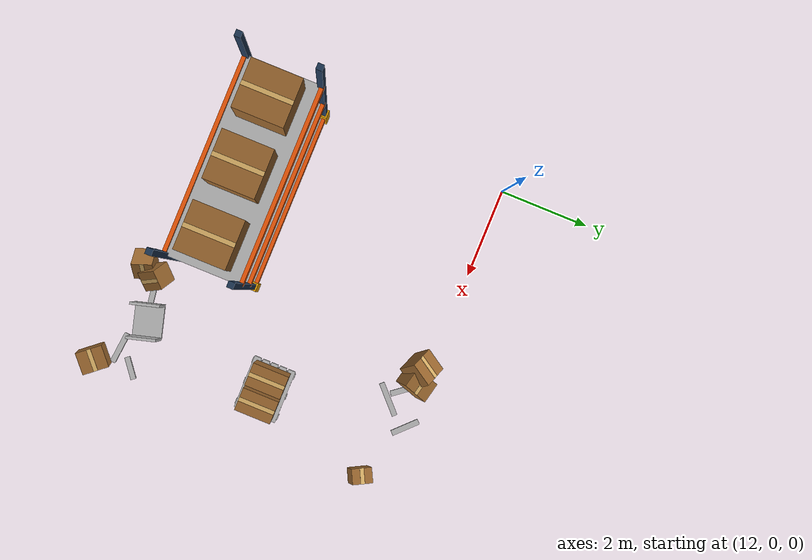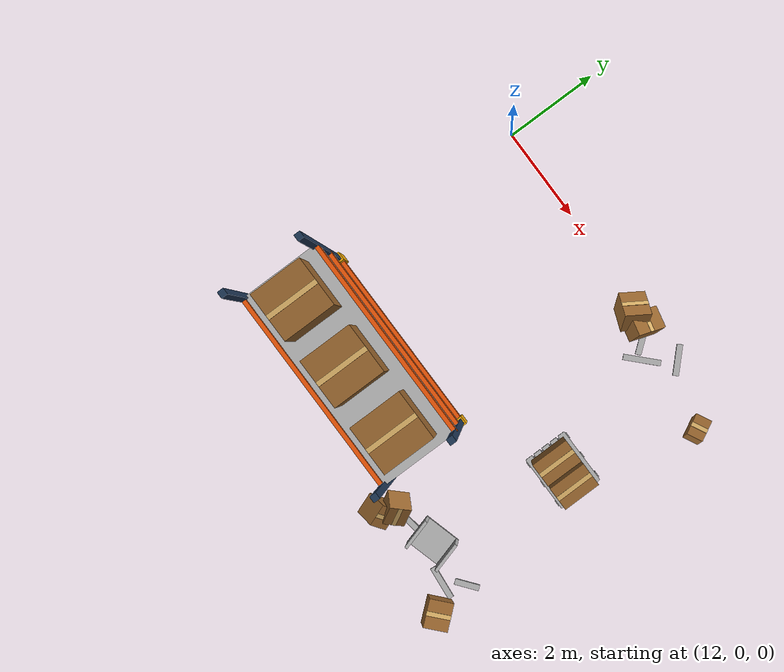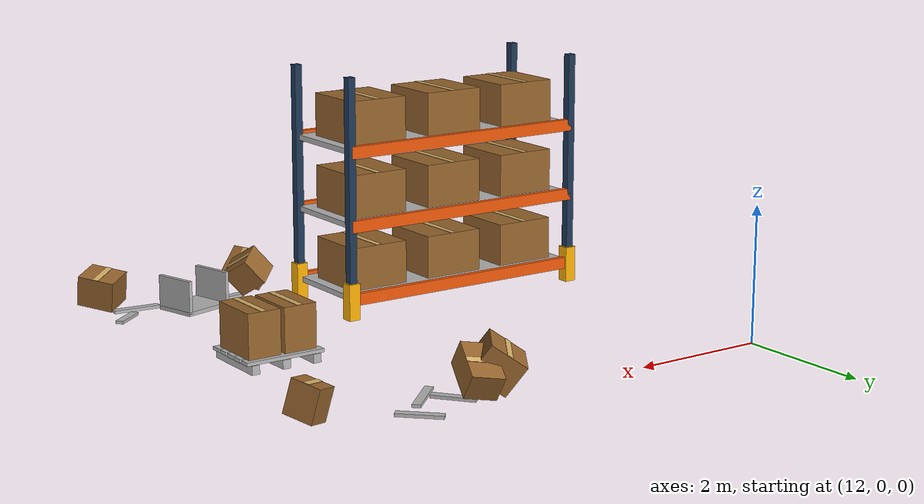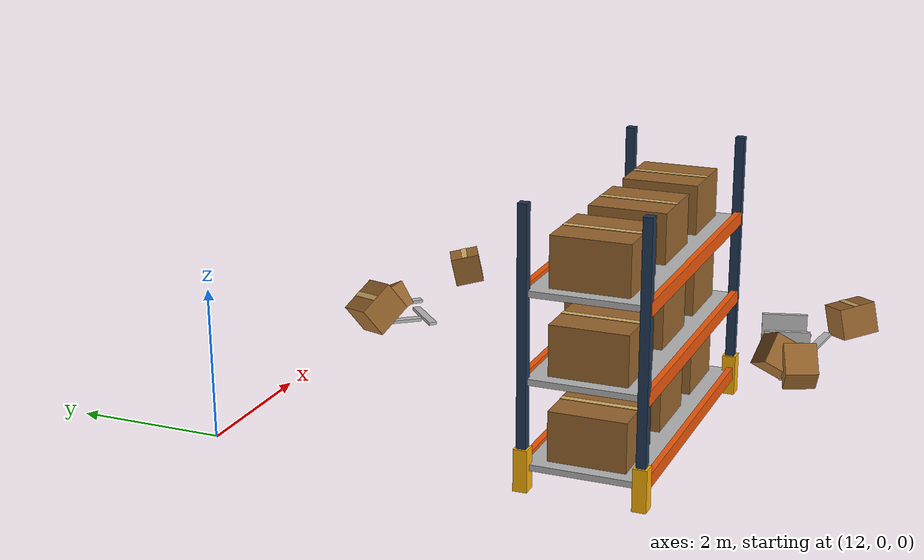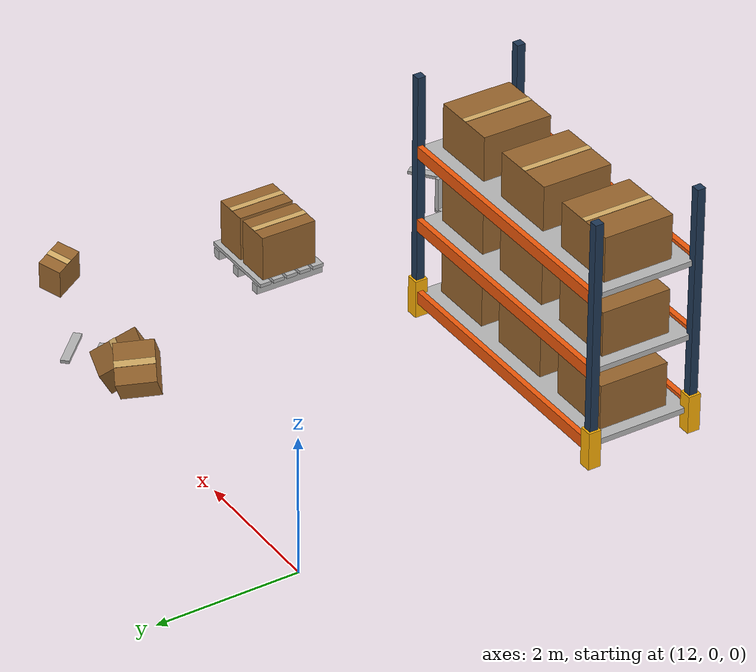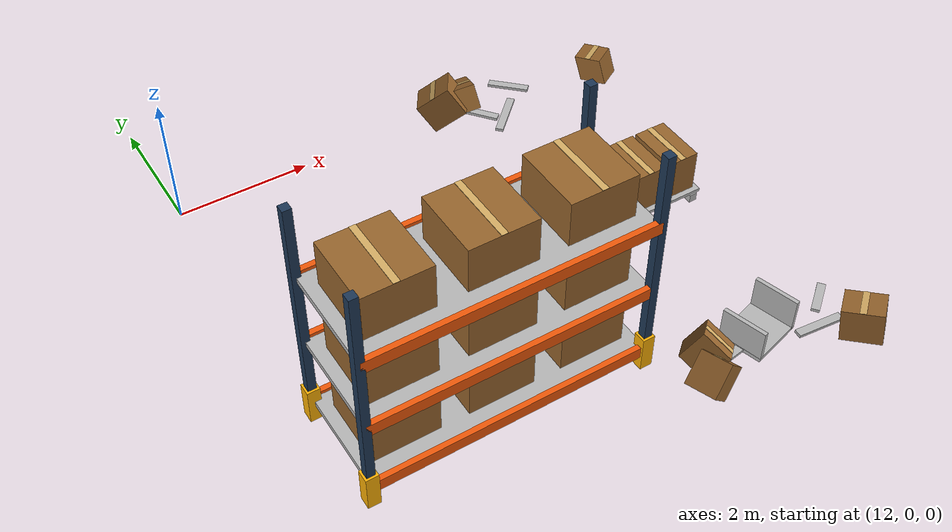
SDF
<sdf version="1.9">
 <world name="factory">
  <model name="rack_1_1_1">
   <static>true</static>
   <pose>14 -5 0 0 0 0</pose>
   <link name="body">
    <visual name="post0_visual">
     <pose>-2 -0.75 1.8 0 0 0</pose>
     <geometry><box><size>0.12 0.12 3.6</size></box></geometry>
     <material><ambient>.12 .22 .34 1</ambient><diffuse>.12 .22 .34 1</diffuse></material>
    </visual>
    <collision name="post0_collision">
     <pose>-2 -0.75 1.8 0 0 0</pose>
     <geometry><box><size>0.12 0.12 3.6</size></box></geometry>
    </collision>
    <visual name="guard0_visual">
     <pose>-2 -0.75 0.275 0 0 0</pose>
     <geometry><box><size>0.18 0.18 0.55</size></box></geometry>
     <material><ambient>1 .7 .02 1</ambient><diffuse>1 .7 .02 1</diffuse></material>
    </visual>
    <collision name="guard0_collision">
     <pose>-2 -0.75 0.275 0 0 0</pose>
     <geometry><box><size>0.18 0.18 0.55</size></box></geometry>
    </collision>
    <visual name="post1_visual">
     <pose>2 -0.75 1.8 0 0 0</pose>
     <geometry><box><size>0.12 0.12 3.6</size></box></geometry>
     <material><ambient>.12 .22 .34 1</ambient><diffuse>.12 .22 .34 1</diffuse></material>
    </visual>
    <collision name="post1_collision">
     <pose>2 -0.75 1.8 0 0 0</pose>
     <geometry><box><size>0.12 0.12 3.6</size></box></geometry>
    </collision>
    <visual name="guard1_visual">
     <pose>2 -0.75 0.275 0 0 0</pose>
     <geometry><box><size>0.18 0.18 0.55</size></box></geometry>
     <material><ambient>1 .7 .02 1</ambient><diffuse>1 .7 .02 1</diffuse></material>
    </visual>
    <collision name="guard1_collision">
     <pose>2 -0.75 0.275 0 0 0</pose>
     <geometry><box><size>0.18 0.18 0.55</size></box></geometry>
    </collision>
    <visual name="post2_visual">
     <pose>-2 0.75 1.8 0 0 0</pose>
     <geometry><box><size>0.12 0.12 3.6</size></box></geometry>
     <material><ambient>.12 .22 .34 1</ambient><diffuse>.12 .22 .34 1</diffuse></material>
    </visual>
    <collision name="post2_collision">
     <pose>-2 0.75 1.8 0 0 0</pose>
     <geometry><box><size>0.12 0.12 3.6</size></box></geometry>
    </collision>
    <visual name="guard2_visual">
     <pose>-2 0.75 0.275 0 0 0</pose>
     <geometry><box><size>0.18 0.18 0.55</size></box></geometry>
     <material><ambient>1 .7 .02 1</ambient><diffuse>1 .7 .02 1</diffuse></material>
    </visual>
    <collision name="guard2_collision">
     <pose>-2 0.75 0.275 0 0 0</pose>
     <geometry><box><size>0.18 0.18 0.55</size></box></geometry>
    </collision>
    <visual name="post3_visual">
     <pose>2 0.75 1.8 0 0 0</pose>
     <geometry><box><size>0.12 0.12 3.6</size></box></geometry>
     <material><ambient>.12 .22 .34 1</ambient><diffuse>.12 .22 .34 1</diffuse></material>
    </visual>
    <collision name="post3_collision">
     <pose>2 0.75 1.8 0 0 0</pose>
     <geometry><box><size>0.12 0.12 3.6</size></box></geometry>
    </collision>
    <visual name="guard3_visual">
     <pose>2 0.75 0.275 0 0 0</pose>
     <geometry><box><size>0.18 0.18 0.55</size></box></geometry>
     <material><ambient>1 .7 .02 1</ambient><diffuse>1 .7 .02 1</diffuse></material>
    </visual>
    <collision name="guard3_collision">
     <pose>2 0.75 0.275 0 0 0</pose>
     <geometry><box><size>0.18 0.18 0.55</size></box></geometry>
    </collision>
    <visual name="shelf0_visual">
     <pose>0 0 0.3 0 0 0</pose>
     <geometry><mesh><uri>model://factory_scene_assets/meshes/wood_010.dae</uri></mesh></geometry>
    </visual>
    <collision name="shelf0_collision">
     <pose>0 0 0.3 0 0 0</pose>
     <geometry><box><size>4 1.5 0.08</size></box></geometry>
    </collision>
    <visual name="beam0_0_visual">
     <pose>0 -0.77 0.3 0 0 0</pose>
     <geometry><box><size>4 0.08 0.18</size></box></geometry>
     <material><ambient>.95 .35 .035 1</ambient><diffuse>.95 .35 .035 1</diffuse></material>
    </visual>
    <collision name="beam0_0_collision">
     <pose>0 -0.77 0.3 0 0 0</pose>
     <geometry><box><size>4 0.08 0.18</size></box></geometry>
    </collision>
    <visual name="beam0_1_visual">
     <pose>0 0.77 0.3 0 0 0</pose>
     <geometry><box><size>4 0.08 0.18</size></box></geometry>
     <material><ambient>.95 .35 .035 1</ambient><diffuse>.95 .35 .035 1</diffuse></material>
    </visual>
    <collision name="beam0_1_collision">
     <pose>0 0.77 0.3 0 0 0</pose>
     <geometry><box><size>4 0.08 0.18</size></box></geometry>
    </collision>
    <visual name="cargo0_0_visual">
     <pose>-1.35 0 0.665 0 0 0</pose>
     <geometry><box><size>0.95 1 0.65</size></box></geometry>
     <material><ambient>.60 .40 .18 1</ambient><diffuse>.60 .40 .18 1</diffuse></material>
    </visual>
    <collision name="cargo0_0_collision">
     <pose>-1.35 0 0.665 0 0 0</pose>
     <geometry><box><size>0.95 1 0.65</size></box></geometry>
    </collision>
    <visual name="cargo0_0_tape_visual">
     <pose>-1.35 0 0.993 0 0 0</pose>
     <geometry><box><size>0.09 1 0.006</size></box></geometry>
     <material><ambient>.85 .69 .4 1</ambient><diffuse>.85 .69 .4 1</diffuse></material>
    </visual>
    <visual name="cargo0_1_visual">
     <pose>0 0 0.665 0 0 0</pose>
     <geometry><box><size>0.95 1 0.65</size></box></geometry>
     <material><ambient>.60 .40 .18 1</ambient><diffuse>.60 .40 .18 1</diffuse></material>
    </visual>
    <collision name="cargo0_1_collision">
     <pose>0 0 0.665 0 0 0</pose>
     <geometry><box><size>0.95 1 0.65</size></box></geometry>
    </collision>
    <visual name="cargo0_1_tape_visual">
     <pose>0 0 0.993 0 0 0</pose>
     <geometry><box><size>0.09 1 0.006</size></box></geometry>
     <material><ambient>.85 .69 .4 1</ambient><diffuse>.85 .69 .4 1</diffuse></material>
    </visual>
    <visual name="cargo0_2_visual">
     <pose>1.35 0 0.665 0 0 0</pose>
     <geometry><box><size>0.95 1 0.65</size></box></geometry>
     <material><ambient>.60 .40 .18 1</ambient><diffuse>.60 .40 .18 1</diffuse></material>
    </visual>
    <collision name="cargo0_2_collision">
     <pose>1.35 0 0.665 0 0 0</pose>
     <geometry><box><size>0.95 1 0.65</size></box></geometry>
    </collision>
    <visual name="cargo0_2_tape_visual">
     <pose>1.35 0 0.993 0 0 0</pose>
     <geometry><box><size>0.09 1 0.006</size></box></geometry>
     <material><ambient>.85 .69 .4 1</ambient><diffuse>.85 .69 .4 1</diffuse></material>
    </visual>
    <visual name="shelf1_visual">
     <pose>0 0 1.4 0 0 0</pose>
     <geometry><mesh><uri>model://factory_scene_assets/meshes/wood_010.dae</uri></mesh></geometry>
    </visual>
    <collision name="shelf1_collision">
     <pose>0 0 1.4 0 0 0</pose>
     <geometry><box><size>4 1.5 0.08</size></box></geometry>
    </collision>
    <visual name="beam1_0_visual">
     <pose>0 -0.77 1.4 0 0 0</pose>
     <geometry><box><size>4 0.08 0.18</size></box></geometry>
     <material><ambient>.95 .35 .035 1</ambient><diffuse>.95 .35 .035 1</diffuse></material>
    </visual>
    <collision name="beam1_0_collision">
     <pose>0 -0.77 1.4 0 0 0</pose>
     <geometry><box><size>4 0.08 0.18</size></box></geometry>
    </collision>
    <visual name="beam1_1_visual">
     <pose>0 0.77 1.4 0 0 0</pose>
     <geometry><box><size>4 0.08 0.18</size></box></geometry>
     <material><ambient>.95 .35 .035 1</ambient><diffuse>.95 .35 .035 1</diffuse></material>
    </visual>
    <collision name="beam1_1_collision">
     <pose>0 0.77 1.4 0 0 0</pose>
     <geometry><box><size>4 0.08 0.18</size></box></geometry>
    </collision>
    <visual name="cargo1_0_visual">
     <pose>-1.35 0 1.765 0 0 0</pose>
     <geometry><box><size>0.95 1 0.65</size></box></geometry>
     <material><ambient>.60 .40 .18 1</ambient><diffuse>.60 .40 .18 1</diffuse></material>
    </visual>
    <collision name="cargo1_0_collision">
     <pose>-1.35 0 1.765 0 0 0</pose>
     <geometry><box><size>0.95 1 0.65</size></box></geometry>
    </collision>
    <visual name="cargo1_0_tape_visual">
     <pose>-1.35 0 2.093 0 0 0</pose>
     <geometry><box><size>0.09 1 0.006</size></box></geometry>
     <material><ambient>.85 .69 .4 1</ambient><diffuse>.85 .69 .4 1</diffuse></material>
    </visual>
    <visual name="cargo1_1_visual">
     <pose>0 0 1.765 0 0 0</pose>
     <geometry><box><size>0.95 1 0.65</size></box></geometry>
     <material><ambient>.60 .40 .18 1</ambient><diffuse>.60 .40 .18 1</diffuse></material>
    </visual>
    <collision name="cargo1_1_collision">
     <pose>0 0 1.765 0 0 0</pose>
     <geometry><box><size>0.95 1 0.65</size></box></geometry>
    </collision>
    <visual name="cargo1_1_tape_visual">
     <pose>0 0 2.093 0 0 0</pose>
     <geometry><box><size>0.09 1 0.006</size></box></geometry>
     <material><ambient>.85 .69 .4 1</ambient><diffuse>.85 .69 .4 1</diffuse></material>
    </visual>
    <visual name="cargo1_2_visual">
     <pose>1.35 0 1.765 0 0 0</pose>
     <geometry><box><size>0.95 1 0.65</size></box></geometry>
     <material><ambient>.60 .40 .18 1</ambient><diffuse>.60 .40 .18 1</diffuse></material>
    </visual>
    <collision name="cargo1_2_collision">
     <pose>1.35 0 1.765 0 0 0</pose>
     <geometry><box><size>0.95 1 0.65</size></box></geometry>
    </collision>
    <visual name="cargo1_2_tape_visual">
     <pose>1.35 0 2.093 0 0 0</pose>
     <geometry><box><size>0.09 1 0.006</size></box></geometry>
     <material><ambient>.85 .69 .4 1</ambient><diffuse>.85 .69 .4 1</diffuse></material>
    </visual>
    <visual name="shelf2_visual">
     <pose>0 0 2.5 0 0 0</pose>
     <geometry><mesh><uri>model://factory_scene_assets/meshes/wood_010.dae</uri></mesh></geometry>
    </visual>
    <collision name="shelf2_collision">
     <pose>0 0 2.5 0 0 0</pose>
     <geometry><box><size>4 1.5 0.08</size></box></geometry>
    </collision>
    <visual name="beam2_0_visual">
     <pose>0 -0.77 2.5 0 0 0</pose>
     <geometry><box><size>4 0.08 0.18</size></box></geometry>
     <material><ambient>.95 .35 .035 1</ambient><diffuse>.95 .35 .035 1</diffuse></material>
    </visual>
    <collision name="beam2_0_collision">
     <pose>0 -0.77 2.5 0 0 0</pose>
     <geometry><box><size>4 0.08 0.18</size></box></geometry>
    </collision>
    <visual name="beam2_1_visual">
     <pose>0 0.77 2.5 0 0 0</pose>
     <geometry><box><size>4 0.08 0.18</size></box></geometry>
     <material><ambient>.95 .35 .035 1</ambient><diffuse>.95 .35 .035 1</diffuse></material>
    </visual>
    <collision name="beam2_1_collision">
     <pose>0 0.77 2.5 0 0 0</pose>
     <geometry><box><size>4 0.08 0.18</size></box></geometry>
    </collision>
    <visual name="cargo2_0_visual">
     <pose>-1.35 0 2.865 0 0 0</pose>
     <geometry><box><size>0.95 1 0.65</size></box></geometry>
     <material><ambient>.60 .40 .18 1</ambient><diffuse>.60 .40 .18 1</diffuse></material>
    </visual>
    <collision name="cargo2_0_collision">
     <pose>-1.35 0 2.865 0 0 0</pose>
     <geometry><box><size>0.95 1 0.65</size></box></geometry>
    </collision>
    <visual name="cargo2_0_tape_visual">
     <pose>-1.35 0 3.193 0 0 0</pose>
     <geometry><box><size>0.09 1 0.006</size></box></geometry>
     <material><ambient>.85 .69 .4 1</ambient><diffuse>.85 .69 .4 1</diffuse></material>
    </visual>
    <visual name="cargo2_1_visual">
     <pose>0 0 2.865 0 0 0</pose>
     <geometry><box><size>0.95 1 0.65</size></box></geometry>
     <material><ambient>.60 .40 .18 1</ambient><diffuse>.60 .40 .18 1</diffuse></material>
    </visual>
    <collision name="cargo2_1_collision">
     <pose>0 0 2.865 0 0 0</pose>
     <geometry><box><size>0.95 1 0.65</size></box></geometry>
    </collision>
    <visual name="cargo2_1_tape_visual">
     <pose>0 0 3.193 0 0 0</pose>
     <geometry><box><size>0.09 1 0.006</size></box></geometry>
     <material><ambient>.85 .69 .4 1</ambient><diffuse>.85 .69 .4 1</diffuse></material>
    </visual>
    <visual name="cargo2_2_visual">
     <pose>1.35 0 2.865 0 0 0</pose>
     <geometry><box><size>0.95 1 0.65</size></box></geometry>
     <material><ambient>.60 .40 .18 1</ambient><diffuse>.60 .40 .18 1</diffuse></material>
    </visual>
    <collision name="cargo2_2_collision">
     <pose>1.35 0 2.865 0 0 0</pose>
     <geometry><box><size>0.95 1 0.65</size></box></geometry>
    </collision>
    <visual name="cargo2_2_tape_visual">
     <pose>1.35 0 3.193 0 0 0</pose>
     <geometry><box><size>0.09 1 0.006</size></box></geometry>
     <material><ambient>.85 .69 .4 1</ambient><diffuse>.85 .69 .4 1</diffuse></material>
    </visual>
   </link>
  </model>
  <model name="organized_pallet_1_1">
   <static>true</static>
   <pose>18 -3.2 0 0 0 0</pose>
   <link name="body">
    <visual name="runner0_visual">
     <pose>-0.48 0 0.065 0 0 0</pose>
     <geometry><mesh><uri>model://factory_scene_assets/meshes/wood_011.dae</uri></mesh></geometry>
    </visual>
    <collision name="runner0_collision">
     <pose>-0.48 0 0.065 0 0 0</pose>
     <geometry><box><size>0.12 1 0.13</size></box></geometry>
    </collision>
    <visual name="runner1_visual">
     <pose>0 0 0.065 0 0 0</pose>
     <geometry><mesh><uri>model://factory_scene_assets/meshes/wood_011.dae</uri></mesh></geometry>
    </visual>
    <collision name="runner1_collision">
     <pose>0 0 0.065 0 0 0</pose>
     <geometry><box><size>0.12 1 0.13</size></box></geometry>
    </collision>
    <visual name="runner2_visual">
     <pose>0.48 0 0.065 0 0 0</pose>
     <geometry><mesh><uri>model://factory_scene_assets/meshes/wood_011.dae</uri></mesh></geometry>
    </visual>
    <collision name="runner2_collision">
     <pose>0.48 0 0.065 0 0 0</pose>
     <geometry><box><size>0.12 1 0.13</size></box></geometry>
    </collision>
    <visual name="plank0_visual">
     <pose>0 -0.4 0.155 0 0 0</pose>
     <geometry><mesh><uri>model://factory_scene_assets/meshes/wood_012.dae</uri></mesh></geometry>
    </visual>
    <collision name="plank0_collision">
     <pose>0 -0.4 0.155 0 0 0</pose>
     <geometry><box><size>1.2 0.16 0.05</size></box></geometry>
    </collision>
    <visual name="plank1_visual">
     <pose>0 -0.2 0.155 0 0 0</pose>
     <geometry><mesh><uri>model://factory_scene_assets/meshes/wood_012.dae</uri></mesh></geometry>
    </visual>
    <collision name="plank1_collision">
     <pose>0 -0.2 0.155 0 0 0</pose>
     <geometry><box><size>1.2 0.16 0.05</size></box></geometry>
    </collision>
    <visual name="plank2_visual">
     <pose>0 0 0.155 0 0 0</pose>
     <geometry><mesh><uri>model://factory_scene_assets/meshes/wood_012.dae</uri></mesh></geometry>
    </visual>
    <collision name="plank2_collision">
     <pose>0 0 0.155 0 0 0</pose>
     <geometry><box><size>1.2 0.16 0.05</size></box></geometry>
    </collision>
    <visual name="plank3_visual">
     <pose>0 0.2 0.155 0 0 0</pose>
     <geometry><mesh><uri>model://factory_scene_assets/meshes/wood_012.dae</uri></mesh></geometry>
    </visual>
    <collision name="plank3_collision">
     <pose>0 0.2 0.155 0 0 0</pose>
     <geometry><box><size>1.2 0.16 0.05</size></box></geometry>
    </collision>
    <visual name="plank4_visual">
     <pose>0 0.4 0.155 0 0 0</pose>
     <geometry><mesh><uri>model://factory_scene_assets/meshes/wood_012.dae</uri></mesh></geometry>
    </visual>
    <collision name="plank4_collision">
     <pose>0 0.4 0.155 0 0 0</pose>
     <geometry><box><size>1.2 0.16 0.05</size></box></geometry>
    </collision>
    <visual name="load0_visual">
     <pose>-0.28 0 0.505 0 0 0</pose>
     <geometry><box><size>0.5 0.8 0.65</size></box></geometry>
     <material><ambient>.60 .40 .18 1</ambient><diffuse>.60 .40 .18 1</diffuse></material>
    </visual>
    <collision name="load0_collision">
     <pose>-0.28 0 0.505 0 0 0</pose>
     <geometry><box><size>0.5 0.8 0.65</size></box></geometry>
    </collision>
    <visual name="load0_tape_visual">
     <pose>-0.28 0 0.833 0 0 0</pose>
     <geometry><box><size>0.09 0.8 0.006</size></box></geometry>
     <material><ambient>.85 .69 .4 1</ambient><diffuse>.85 .69 .4 1</diffuse></material>
    </visual>
    <visual name="load1_visual">
     <pose>0.28 0 0.505 0 0 0</pose>
     <geometry><box><size>0.5 0.8 0.65</size></box></geometry>
     <material><ambient>.60 .40 .18 1</ambient><diffuse>.60 .40 .18 1</diffuse></material>
    </visual>
    <collision name="load1_collision">
     <pose>0.28 0 0.505 0 0 0</pose>
     <geometry><box><size>0.5 0.8 0.65</size></box></geometry>
    </collision>
    <visual name="load1_tape_visual">
     <pose>0.28 0 0.833 0 0 0</pose>
     <geometry><box><size>0.09 0.8 0.006</size></box></geometry>
     <material><ambient>.85 .69 .4 1</ambient><diffuse>.85 .69 .4 1</diffuse></material>
    </visual>
   </link>
  </model>
  <model name="fallen_box_03_1">
   <static>true</static>
   <pose>16.6 -6.277682 0 0 0 0</pose>
   <link name="body">
    <visual name="box_visual">
     <pose>0 0 0.3934834 -0.6052425 -0.385528 -2.415654</pose>
     <geometry><box><size>0.4454344 0.4745473 0.4583719</size></box></geometry>
     <material><ambient>.60 .40 .18 1</ambient><diffuse>.60 .40 .18 1</diffuse></material>
    </visual>
    <collision name="box_collision">
     <pose>0 0 0.3934834 -0.6052425 -0.385528 -2.415654</pose>
     <geometry><box><size>0.4454344 0.4745473 0.4583719</size></box></geometry>
    </collision>
    <visual name="box_tape_visual">
     <pose>0.1413962 -0.05113246 0.5704097 -0.6052425 -0.385528 -2.415654</pose>
     <geometry><box><size>0.09 0.4745473 0.006</size></box></geometry>
     <material><ambient>.85 .69 .4 1</ambient><diffuse>.85 .69 .4 1</diffuse></material>
    </visual>
   </link>
  </model>
  <model name="fallen_box_03_2">
   <static>true</static>
   <pose>18.76 -6.879725 0 0 0 0</pose>
   <link name="body">
    <visual name="box_visual">
     <pose>0 0 0.3136211 -0.1519436 -0.1423217 -0.8723236</pose>
     <geometry><box><size>0.5607509 0.494427 0.4635992</size></box></geometry>
     <material><ambient>.60 .40 .18 1</ambient><diffuse>.60 .40 .18 1</diffuse></material>
    </visual>
    <collision name="box_collision">
     <pose>0 0 0.3136211 -0.1519436 -0.1423217 -0.8723236</pose>
     <geometry><box><size>0.5607509 0.494427 0.4635992</size></box></geometry>
    </collision>
    <visual name="box_tape_visual">
     <pose>0.006047189 0.04806491 0.5433689 -0.1519436 -0.1423217 -0.8723236</pose>
     <geometry><box><size>0.09 0.494427 0.006</size></box></geometry>
     <material><ambient>.85 .69 .4 1</ambient><diffuse>.85 .69 .4 1</diffuse></material>
    </visual>
   </link>
  </model>
  <model name="fallen_box_03_3">
   <static>true</static>
   <pose>16.44 -6.615822 0 0 0 0</pose>
   <link name="body">
    <visual name="box_visual">
     <pose>0 0 0.3437283 0.8329606 0.02203134 1.923686</pose>
     <geometry><box><size>0.4493619 0.448197 0.484748</size></box></geometry>
     <material><ambient>.60 .40 .18 1</ambient><diffuse>.60 .40 .18 1</diffuse></material>
    </visual>
    <collision name="box_collision">
     <pose>0 0 0.3437283 0.8329606 0.02203134 1.923686</pose>
     <geometry><box><size>0.4493619 0.448197 0.484748</size></box></geometry>
    </collision>
    <visual name="box_tape_visual">
     <pose>0.1691139 0.0661608 0.5087484 0.8329606 0.02203134 1.923686</pose>
     <geometry><box><size>0.09 0.448197 0.006</size></box></geometry>
     <material><ambient>.85 .69 .4 1</ambient><diffuse>.85 .69 .4 1</diffuse></material>
    </visual>
   </link>
  </model>
  <model name="broken_crate_03">
   <static>true</static>
   <pose>17.6 -6.15 0 0 0 0.2727646</pose>
   <link name="body">
    <visual name="base_visual">
     <pose>0 0 0.03 0 0 0</pose>
     <geometry><mesh><uri>model://factory_scene_assets/meshes/wood_013.dae</uri></mesh></geometry>
    </visual>
    <collision name="base_collision">
     <pose>0 0 0.03 0 0 0</pose>
     <geometry><box><size>0.8 0.65 0.06</size></box></geometry>
    </collision>
    <visual name="side0_visual">
     <pose>-0.37 0 0.28 0 0 0</pose>
     <geometry><mesh><uri>model://factory_scene_assets/meshes/wood_014.dae</uri></mesh></geometry>
    </visual>
    <collision name="side0_collision">
     <pose>-0.37 0 0.28 0 0 0</pose>
     <geometry><box><size>0.06 0.65 0.5</size></box></geometry>
    </collision>
    <visual name="side1_visual">
     <pose>0.37 0 0.28 0 0 0</pose>
     <geometry><mesh><uri>model://factory_scene_assets/meshes/wood_014.dae</uri></mesh></geometry>
    </visual>
    <collision name="side1_collision">
     <pose>0.37 0 0.28 0 0 0</pose>
     <geometry><box><size>0.06 0.65 0.5</size></box></geometry>
    </collision>
   </link>
  </model>
  <model name="debris_plank_03_1">
   <static>true</static>
   <pose>18.71901 -6.130419 0 0 0 0.6649613</pose>
   <link name="body">
    <visual name="wood_visual">
     <pose>0 0 0.023 0 0 0</pose>
     <geometry><mesh><uri>model://factory_scene_assets/meshes/wood_031.dae</uri></mesh></geometry>
    </visual>
    <collision name="wood_collision">
     <pose>0 0 0.023 0 0 0</pose>
     <geometry><box><size>0.5111659 0.12 0.045</size></box></geometry>
    </collision>
   </link>
  </model>
  <model name="debris_plank_03_2">
   <static>true</static>
   <pose>18.38613 -6.510422 0 0 0 -0.09744753</pose>
   <link name="body">
    <visual name="wood_visual">
     <pose>0 0 0.023 0 0 0</pose>
     <geometry><mesh><uri>model://factory_scene_assets/meshes/wood_032.dae</uri></mesh></geometry>
    </visual>
    <collision name="wood_collision">
     <pose>0 0 0.023 0 0 0</pose>
     <geometry><box><size>0.7074184 0.12 0.045</size></box></geometry>
    </collision>
   </link>
  </model>
  <model name="debris_plank_03_3">
   <static>true</static>
   <pose>17.12544 -6.276281 0 0 0 -2.992106</pose>
   <link name="body">
    <visual name="wood_visual">
     <pose>0 0 0.023 0 0 0</pose>
     <geometry><mesh><uri>model://factory_scene_assets/meshes/wood_033.dae</uri></mesh></geometry>
    </visual>
    <collision name="wood_collision">
     <pose>0 0 0.023 0 0 0</pose>
     <geometry><box><size>0.8833731 0.12 0.045</size></box></geometry>
    </collision>
   </link>
  </model>
  <model name="fallen_box_04_1">
   <static>true</static>
   <pose>16.6 -0.2087333 0 0 0 0</pose>
   <link name="body">
    <visual name="box_visual">
     <pose>0 0 0.3692798 -0.1958774 0.4685049 1.228428</pose>
     <geometry><box><size>0.666479 0.4675302 0.3844001</size></box></geometry>
     <material><ambient>.60 .40 .18 1</ambient><diffuse>.60 .40 .18 1</diffuse></material>
    </visual>
    <collision name="box_collision">
     <pose>0 0 0.3692798 -0.1958774 0.4685049 1.228428</pose>
     <geometry><box><size>0.666479 0.4675302 0.3844001</size></box></geometry>
    </collision>
    <visual name="box_tape_visual">
     <pose>-0.006760886 0.09419416 0.5401154 -0.1958774 0.4685049 1.228428</pose>
     <geometry><box><size>0.09 0.4675302 0.006</size></box></geometry>
     <material><ambient>.85 .69 .4 1</ambient><diffuse>.85 .69 .4 1</diffuse></material>
    </visual>
   </link>
  </model>
  <model name="fallen_box_04_4">
   <static>true</static>
   <pose>18.92 -0.5844527 0 0 0 0</pose>
   <link name="body">
    <visual name="box_visual">
     <pose>0 0 0.3103455 0.1541565 -0.2013575 -1.135189</pose>
     <geometry><box><size>0.4468283 0.3303658 0.4767969</size></box></geometry>
     <material><ambient>.60 .40 .18 1</ambient><diffuse>.60 .40 .18 1</diffuse></material>
    </visual>
    <collision name="box_collision">
     <pose>0 0 0.3103455 0.1541565 -0.2013575 -1.135189</pose>
     <geometry><box><size>0.4468283 0.3303658 0.4767969</size></box></geometry>
    </collision>
    <visual name="box_tape_visual">
     <pose>-0.05373503 0.0276115 0.5440619 0.1541565 -0.2013575 -1.135189</pose>
     <geometry><box><size>0.09 0.3303658 0.006</size></box></geometry>
     <material><ambient>.85 .69 .4 1</ambient><diffuse>.85 .69 .4 1</diffuse></material>
    </visual>
   </link>
  </model>
  <model name="fallen_box_04_5">
   <static>true</static>
   <pose>16.28 -0.2310701 0 0 0 0</pose>
   <link name="body">
    <visual name="box_visual">
     <pose>0 0 0.4131699 0.1646464 0.6122081 2.674089</pose>
     <geometry><box><size>0.5785695 0.5376572 0.4976143</size></box></geometry>
     <material><ambient>.60 .40 .18 1</ambient><diffuse>.60 .40 .18 1</diffuse></material>
    </visual>
    <collision name="box_collision">
     <pose>0 0 0.4131699 0.1646464 0.6122081 2.674089</pose>
     <geometry><box><size>0.5785695 0.5376572 0.4976143</size></box></geometry>
    </collision>
    <visual name="box_tape_visual">
     <pose>-0.1088332 0.1011753 0.6164572 0.1646464 0.6122081 2.674089</pose>
     <geometry><box><size>0.09 0.5376572 0.006</size></box></geometry>
     <material><ambient>.85 .69 .4 1</ambient><diffuse>.85 .69 .4 1</diffuse></material>
    </visual>
   </link>
  </model>
  <model name="debris_plank_04_0">
   <static>true</static>
   <pose>17.63292 -0.02361536 0 0 0 -0.7789334</pose>
   <link name="body">
    <visual name="wood_visual">
     <pose>0 0 0.023 0 0 0</pose>
     <geometry><mesh><uri>model://factory_scene_assets/meshes/wood_035.dae</uri></mesh></geometry>
    </visual>
    <collision name="wood_collision">
     <pose>0 0 0.023 0 0 0</pose>
     <geometry><box><size>0.6424272 0.12 0.045</size></box></geometry>
    </collision>
   </link>
  </model>
  <model name="debris_plank_04_1">
   <static>true</static>
   <pose>17.20112 -0.6021754 0 0 0 -2.37828</pose>
   <link name="body">
    <visual name="wood_visual">
     <pose>0 0 0.023 0 0 0</pose>
     <geometry><mesh><uri>model://factory_scene_assets/meshes/wood_036.dae</uri></mesh></geometry>
    </visual>
    <collision name="wood_collision">
     <pose>0 0 0.023 0 0 0</pose>
     <geometry><box><size>0.7713962 0.12 0.045</size></box></geometry>
    </collision>
   </link>
  </model>
  <model name="debris_plank_04_3">
   <static>true</static>
   <pose>16.87745 -0.3584879 0 0 0 2.235297</pose>
   <link name="body">
    <visual name="wood_visual">
     <pose>0 0 0.023 0 0 0</pose>
     <geometry><mesh><uri>model://factory_scene_assets/meshes/wood_038.dae</uri></mesh></geometry>
    </visual>
    <collision name="wood_collision">
     <pose>0 0 0.023 0 0 0</pose>
     <geometry><box><size>0.6191517 0.12 0.045</size></box></geometry>
    </collision>
   </link>
  </model>
 </world>
</sdf>
